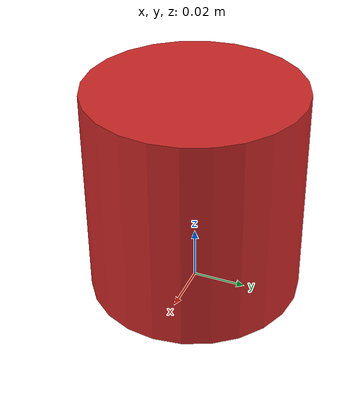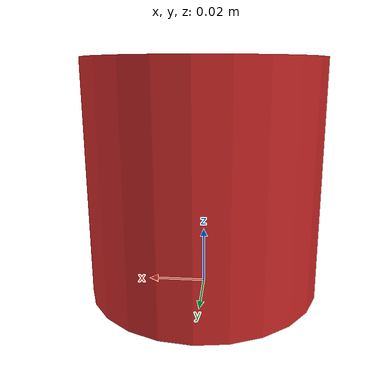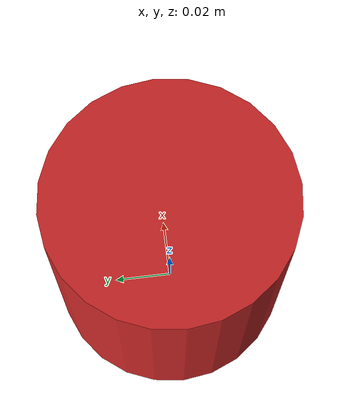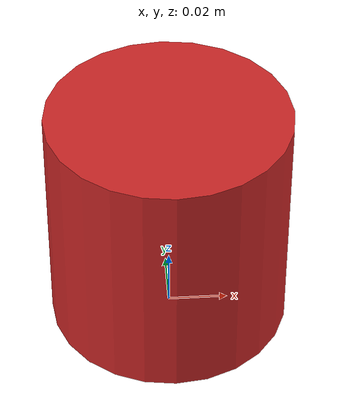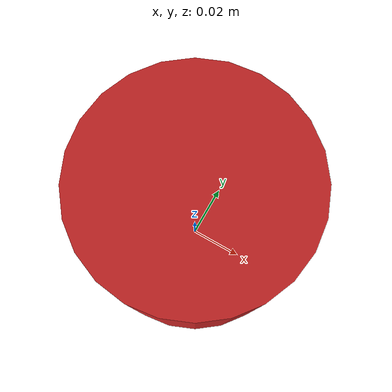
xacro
<?xml version="1.0"?>
<robot name="product">

<link name="base_link">
  <collision>
    <origin xyz="0 0 0.04" rpy="0 0 0"/>
    <geometry>
      <cylinder length="0.08" radius="0.04"/>
    </geometry>

     <surface>
            <bounce>
              <restitution_coefficient>0</restitution_coefficient>
              <threshold>1000</threshold>
            </bounce>
            <friction>
              <ode>
                <mu>1.0</mu>
                <mu2>1.0</mu2>
              </ode>
            </friction>
            <contact>
              <ode>
                <max_vel>-0.12</max_vel>
              </ode>
            </contact>
          </surface>
  </collision>

  <visual>
    <origin xyz="0 0 0.04" rpy="0 0 0"/>
    <geometry>
      <cylinder length="0.08" radius="0.04"/>
    </geometry>
  </visual>

  <inertial>
    <origin xyz="0 0 0.04" rpy="0 0 0"/>
    <mass value="0.001"/>
    <inertia
      ixx="0.0001" ixy="0.0" ixz="0.0"
      iyy="0.0001" iyz="0.0"
      izz="0.0001"/>
  </inertial>
</link>

<gazebo reference="base_link">
  <material>Gazebo/Red</material>
</gazebo>

</robot>
